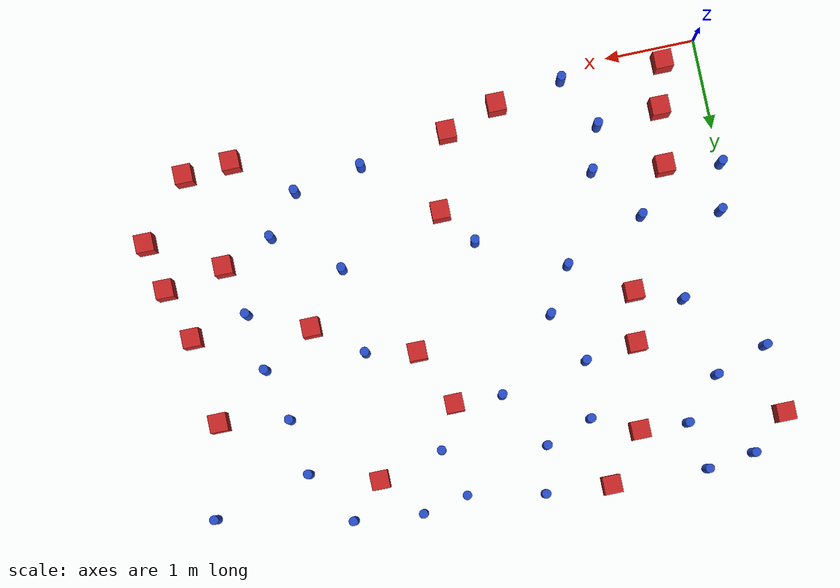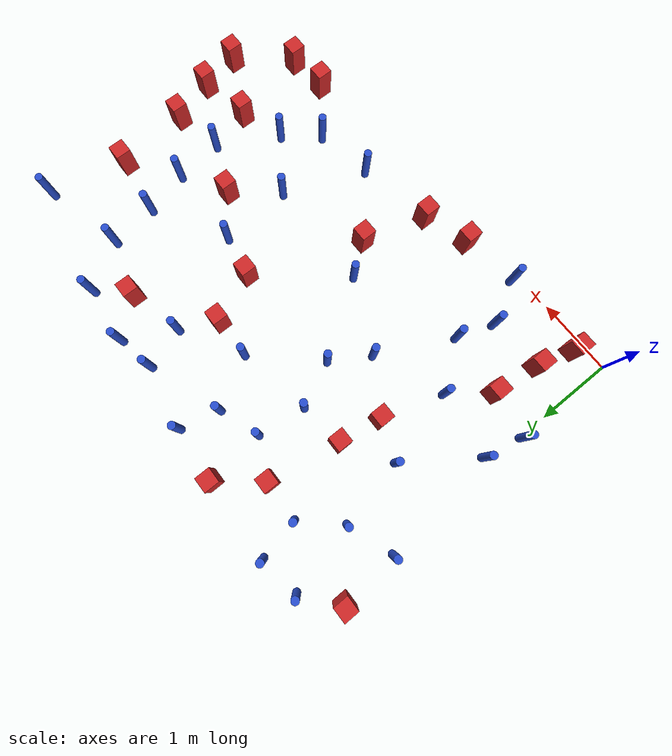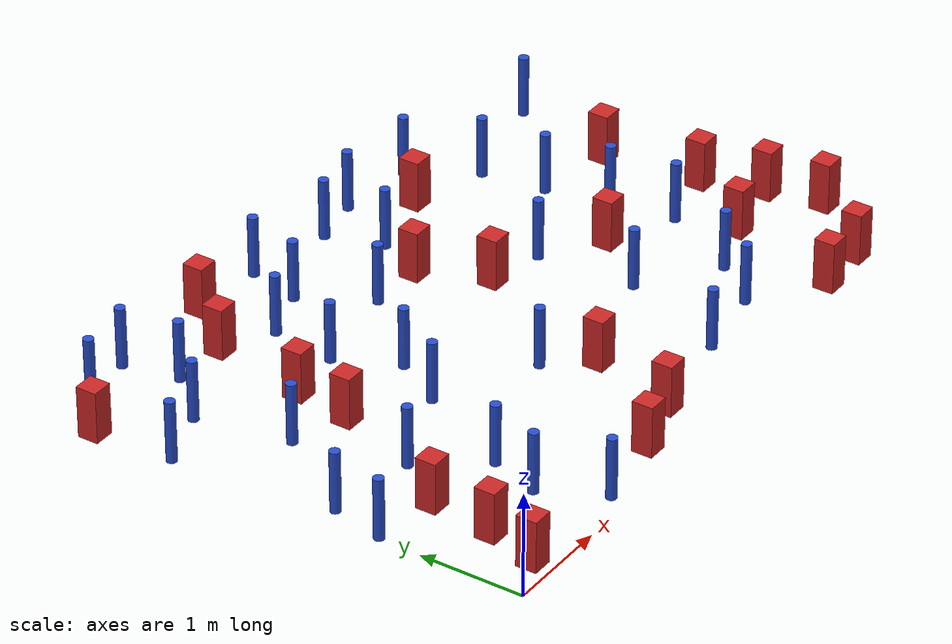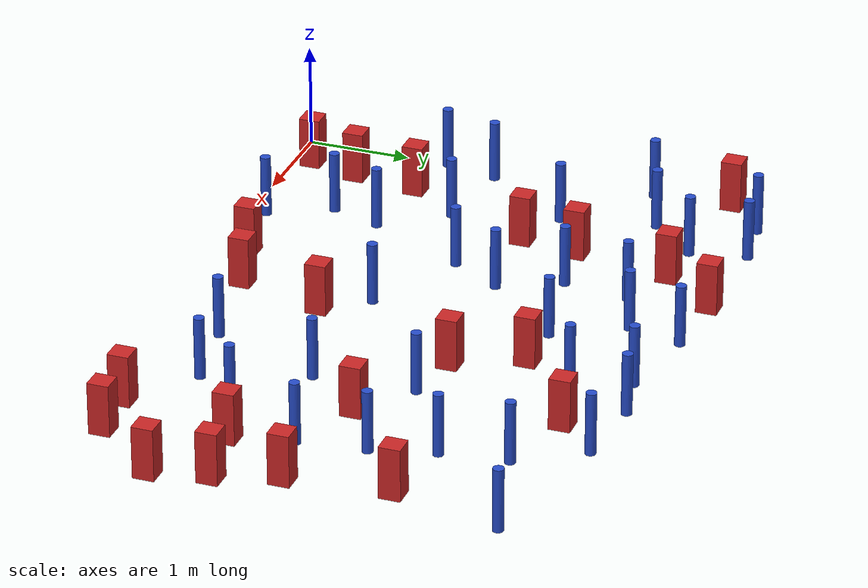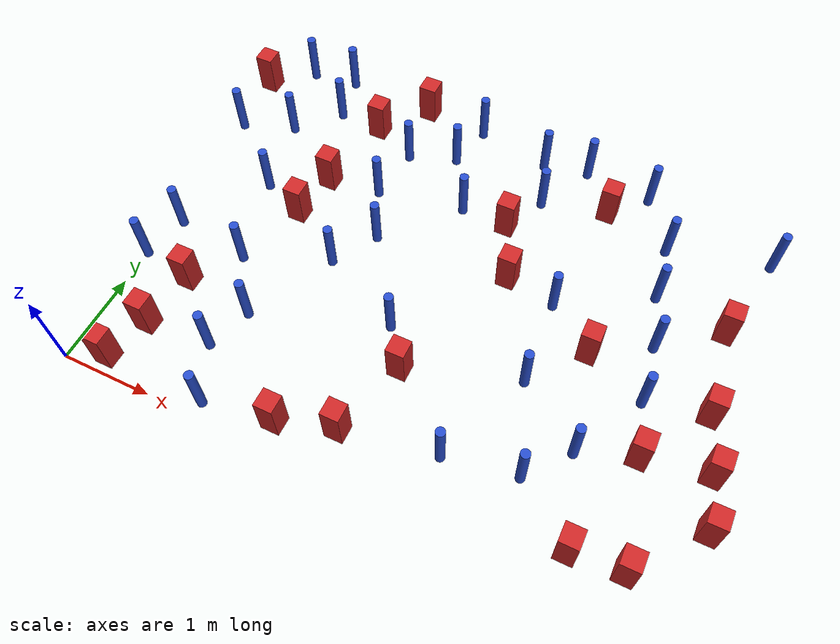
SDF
<sdf version="1.6">
 <model name="dense_39">
  <model name="square_post_obstacle1">
   <static>true</static>
   <pose>3.69093480242 2.77040469333 1.91545236811e-07 -7.35059704564e-06 1.12565212e-07 2.39332434364e-05</pose>
   <link name="link">
    <pose>0 0 0.25 0 -0 0</pose>
    <inertial>
     <mass>100</mass>
     <inertia>
      <ixx>0.166667</ixx>
      <ixy>0</ixy>
      <ixz>0</ixz>
      <iyy>0.166667</iyy>
      <iyz>0</iyz>
      <izz>0.166667</izz>
     </inertia>
    </inertial>
    <collision name="collision"><geometry><box><size>.2 .2 .5</size></box></geometry></collision>
    <visual name="visual">
     <geometry><box><size>.2 .2 .5</size></box></geometry>
     <material>
      <script><name>Gazebo/Red</name><uri>file://media/materials/scripts/gazebo.material</uri></script>
     </material>
    </visual>
   </link>
  </model>
  <model name="square_post_obstacle6">
   <static>true</static>
   <pose>4.7739497226 2.27891876205 1.91545236811e-07 -7.35059704564e-06 1.12565212e-07 2.39332434364e-05</pose>
   <link name="link">
    <pose>0 0 0.25 0 -0 0</pose>
    <inertial>
     <mass>100</mass>
     <inertia>
      <ixx>0.166667</ixx>
      <ixy>0</ixy>
      <ixz>0</ixz>
      <iyy>0.166667</iyy>
      <iyz>0</iyz>
      <izz>0.166667</izz>
     </inertia>
    </inertial>
    <collision name="collision"><geometry><box><size>.2 .2 .5</size></box></geometry></collision>
    <visual name="visual">
     <geometry><box><size>.2 .2 .5</size></box></geometry>
     <material>
      <script><name>Gazebo/Red</name><uri>file://media/materials/scripts/gazebo.material</uri></script>
     </material>
    </visual>
   </link>
  </model>
  <model name="square_post_obstacle11">
   <static>true</static>
   <pose>5.2790055508 0.315990524747 1.91545236811e-07 -7.35059704564e-06 1.12565212e-07 2.39332434364e-05</pose>
   <link name="link">
    <pose>0 0 0.25 0 -0 0</pose>
    <inertial>
     <mass>100</mass>
     <inertia>
      <ixx>0.166667</ixx>
      <ixy>0</ixy>
      <ixz>0</ixz>
      <iyy>0.166667</iyy>
      <iyz>0</iyz>
      <izz>0.166667</izz>
     </inertia>
    </inertial>
    <collision name="collision"><geometry><box><size>.2 .2 .5</size></box></geometry></collision>
    <visual name="visual">
     <geometry><box><size>.2 .2 .5</size></box></geometry>
     <material>
      <script><name>Gazebo/Red</name><uri>file://media/materials/scripts/gazebo.material</uri></script>
     </material>
    </visual>
   </link>
  </model>
  <model name="pole_obstacle23">
   <static>true</static>
   <pose>2.87624827587 3.41966444536 7.38925637345e-09 -8.47170692798e-08 1.24976764939e-08 -1.74513093025e-07</pose>
   <link name="link">
    <pose>0 0 0.3 0 -0 0</pose>
    <inertial>
     <mass>1</mass>
     <inertia><ixx>0.145833</ixx><ixy>0</ixy><ixz>0</ixz><iyy>0.145833</iyy><iyz>0</iyz><izz>0.125</izz></inertia>
    </inertial>
    <collision name="collision">
     <geometry><cylinder><radius>0.05</radius><length>.6</length></cylinder></geometry>
    </collision>
    <visual name="visual">
     <geometry><cylinder><radius>0.05</radius><length>.6</length></cylinder></geometry>
     <material>
      <script><name>Gazebo/Blue</name><uri>file://media/materials/scripts/gazebo.material</uri></script>
     </material>
    </visual>
   </link>
  </model>
  <model name="pole_obstacle25">
   <static>true</static>
   <pose>0.84421997213 4.65954832367 7.38925637345e-09 -8.471706928e-08 1.24976765086e-08 -1.74513093015e-07</pose>
   <link name="link">
    <pose>0 0 0.3 0 -0 0</pose>
    <inertial>
     <mass>1</mass>
     <inertia><ixx>0.145833</ixx><ixy>0</ixy><ixz>0</ixz><iyy>0.145833</iyy><iyz>0</iyz><izz>0.125</izz></inertia>
    </inertial>
    <collision name="collision">
     <geometry><cylinder><radius>0.05</radius><length>.6</length></cylinder></geometry>
    </collision>
    <visual name="visual">
     <geometry><cylinder><radius>0.05</radius><length>.6</length></cylinder></geometry>
     <material>
      <script><name>Gazebo/Blue</name><uri>file://media/materials/scripts/gazebo.material</uri></script>
     </material>
    </visual>
   </link>
  </model>
  <model name="pole_obstacle27">
   <static>true</static>
   <pose>1.41497289269 1.21649229469 7.38925637345e-09 -8.471706928e-08 1.24976765079e-08 -1.74513093017e-07</pose>
   <link name="link">
    <pose>0 0 0.3 0 -0 0</pose>
    <inertial>
     <mass>1</mass>
     <inertia><ixx>0.145833</ixx><ixy>0</ixy><ixz>0</ixz><iyy>0.145833</iyy><iyz>0</iyz><izz>0.125</izz></inertia>
    </inertial>
    <collision name="collision">
     <geometry><cylinder><radius>0.05</radius><length>.6</length></cylinder></geometry>
    </collision>
    <visual name="visual">
     <geometry><cylinder><radius>0.05</radius><length>.6</length></cylinder></geometry>
     <material>
      <script><name>Gazebo/Blue</name><uri>file://media/materials/scripts/gazebo.material</uri></script>
     </material>
    </visual>
   </link>
  </model>
  <model name="pole_obstacle47">
   <static>true</static>
   <pose>0.00880648228601 1.41226304231 7.38925637345e-09 -8.47170692798e-08 1.24976765026e-08 -1.7451309302e-07</pose>
   <link name="link">
    <pose>0 0 0.3 0 -0 0</pose>
    <inertial>
     <mass>1</mass>
     <inertia><ixx>0.145833</ixx><ixy>0</ixy><ixz>0</ixz><iyy>0.145833</iyy><iyz>0</iyz><izz>0.125</izz></inertia>
    </inertial>
    <collision name="collision">
     <geometry><cylinder><radius>0.05</radius><length>.6</length></cylinder></geometry>
    </collision>
    <visual name="visual">
     <geometry><cylinder><radius>0.05</radius><length>.6</length></cylinder></geometry>
     <material>
      <script><name>Gazebo/Blue</name><uri>file://media/materials/scripts/gazebo.material</uri></script>
     </material>
    </visual>
   </link>
  </model>
  <model name="pole_obstacle50">
   <static>true</static>
   <pose>5.11585093825 3.8405611347 7.38925637345e-09 -8.47170692798e-08 1.24976764937e-08 -1.74513093023e-07</pose>
   <link name="link">
    <pose>0 0 0.3 0 -0 0</pose>
    <inertial>
     <mass>1</mass>
     <inertia><ixx>0.145833</ixx><ixy>0</ixy><ixz>0</ixz><iyy>0.145833</iyy><iyz>0</iyz><izz>0.125</izz></inertia>
    </inertial>
    <collision name="collision">
     <geometry><cylinder><radius>0.05</radius><length>.6</length></cylinder></geometry>
    </collision>
    <visual name="visual">
     <geometry><cylinder><radius>0.05</radius><length>.6</length></cylinder></geometry>
     <material>
      <script><name>Gazebo/Blue</name><uri>file://media/materials/scripts/gazebo.material</uri></script>
     </material>
    </visual>
   </link>
  </model>
  <model name="square_post_obstacle59">
   <static>true</static>
   <pose>6.36979461459 1.01293578345 1.91545236811e-07 -7.35059704564e-06 1.12565212e-07 2.39332434364e-05</pose>
   <link name="link">
    <pose>0 0 0.25 0 -0 0</pose>
    <inertial>
     <mass>100</mass>
     <inertia>
      <ixx>0.166667</ixx>
      <ixy>0</ixy>
      <ixz>0</ixz>
      <iyy>0.166667</iyy>
      <iyz>0</iyz>
      <izz>0.166667</izz>
     </inertia>
    </inertial>
    <collision name="collision"><geometry><box><size>.2 .2 .5</size></box></geometry></collision>
    <visual name="visual">
     <geometry><box><size>.2 .2 .5</size></box></geometry>
     <material>
      <script><name>Gazebo/Red</name><uri>file://media/materials/scripts/gazebo.material</uri></script>
     </material>
    </visual>
   </link>
  </model>
  <model name="pole_obstacle60">
   <static>true</static>
   <pose>1.88599101799 2.17365387695 7.38925637345e-09 -8.47170692799e-08 1.24976765053e-08 -1.74513093017e-07</pose>
   <link name="link">
    <pose>0 0 0.3 0 -0 0</pose>
    <inertial>
     <mass>1</mass>
     <inertia><ixx>0.145833</ixx><ixy>0</ixy><ixz>0</ixz><iyy>0.145833</iyy><iyz>0</iyz><izz>0.125</izz></inertia>
    </inertial>
    <collision name="collision">
     <geometry><cylinder><radius>0.05</radius><length>.6</length></cylinder></geometry>
    </collision>
    <visual name="visual">
     <geometry><cylinder><radius>0.05</radius><length>.6</length></cylinder></geometry>
     <material>
      <script><name>Gazebo/Blue</name><uri>file://media/materials/scripts/gazebo.material</uri></script>
     </material>
    </visual>
   </link>
  </model>
  <model name="square_post_obstacle69">
   <static>true</static>
   <pose>0.623205401381 1.31021452795 1.91545236811e-07 -7.35059704564e-06 1.12565212e-07 2.39332434364e-05</pose>
   <link name="link">
    <pose>0 0 0.25 0 -0 0</pose>
    <inertial>
     <mass>100</mass>
     <inertia>
      <ixx>0.166667</ixx>
      <ixy>0</ixy>
      <ixz>0</ixz>
      <iyy>0.166667</iyy>
      <iyz>0</iyz>
      <izz>0.166667</izz>
     </inertia>
    </inertial>
    <collision name="collision"><geometry><box><size>.2 .2 .5</size></box></geometry></collision>
    <visual name="visual">
     <geometry><box><size>.2 .2 .5</size></box></geometry>
     <material>
      <script><name>Gazebo/Red</name><uri>file://media/materials/scripts/gazebo.material</uri></script>
     </material>
    </visual>
   </link>
  </model>
  <model name="square_post_obstacle77">
   <static>true</static>
   <pose>1.23754936218 2.59867881142 1.91545236811e-07 -7.35059704564e-06 1.12565212e-07 2.39332434364e-05</pose>
   <link name="link">
    <pose>0 0 0.25 0 -0 0</pose>
    <inertial>
     <mass>100</mass>
     <inertia>
      <ixx>0.166667</ixx>
      <ixy>0</ixy>
      <ixz>0</ixz>
      <iyy>0.166667</iyy>
      <iyz>0</iyz>
      <izz>0.166667</izz>
     </inertia>
    </inertial>
    <collision name="collision"><geometry><box><size>.2 .2 .5</size></box></geometry></collision>
    <visual name="visual">
     <geometry><box><size>.2 .2 .5</size></box></geometry>
     <material>
      <script><name>Gazebo/Red</name><uri>file://media/materials/scripts/gazebo.material</uri></script>
     </material>
    </visual>
   </link>
  </model>
  <model name="pole_obstacle84">
   <static>true</static>
   <pose>5.43733819902 1.99366622692 7.38925637345e-09 -8.471706928e-08 1.24976765177e-08 -1.74513093012e-07</pose>
   <link name="link">
    <pose>0 0 0.3 0 -0 0</pose>
    <inertial>
     <mass>1</mass>
     <inertia><ixx>0.145833</ixx><ixy>0</ixy><ixz>0</ixz><iyy>0.145833</iyy><iyz>0</iyz><izz>0.125</izz></inertia>
    </inertial>
    <collision name="collision">
     <geometry><cylinder><radius>0.05</radius><length>.6</length></cylinder></geometry>
    </collision>
    <visual name="visual">
     <geometry><cylinder><radius>0.05</radius><length>.6</length></cylinder></geometry>
     <material>
      <script><name>Gazebo/Blue</name><uri>file://media/materials/scripts/gazebo.material</uri></script>
     </material>
    </visual>
   </link>
  </model>
  <model name="pole_obstacle85">
   <static>true</static>
   <pose>4.65288766754 0.781070810231 7.38925637345e-09 -8.47170692799e-08 1.24976765038e-08 -1.74513093018e-07</pose>
   <link name="link">
    <pose>0 0 0.3 0 -0 0</pose>
    <inertial>
     <mass>1</mass>
     <inertia><ixx>0.145833</ixx><ixy>0</ixy><ixz>0</ixz><iyy>0.145833</iyy><iyz>0</iyz><izz>0.125</izz></inertia>
    </inertial>
    <collision name="collision">
     <geometry><cylinder><radius>0.05</radius><length>.6</length></cylinder></geometry>
    </collision>
    <visual name="visual">
     <geometry><cylinder><radius>0.05</radius><length>.6</length></cylinder></geometry>
     <material>
      <script><name>Gazebo/Blue</name><uri>file://media/materials/scripts/gazebo.material</uri></script>
     </material>
    </visual>
   </link>
  </model>
  <model name="pole_obstacle93">
   <static>true</static>
   <pose>5.19981372832 3.21830600685 7.38925637345e-09 -8.47170692798e-08 1.24976764937e-08 -1.74513093023e-07</pose>
   <link name="link">
    <pose>0 0 0.3 0 -0 0</pose>
    <inertial>
     <mass>1</mass>
     <inertia><ixx>0.145833</ixx><ixy>0</ixy><ixz>0</ixz><iyy>0.145833</iyy><iyz>0</iyz><izz>0.125</izz></inertia>
    </inertial>
    <collision name="collision">
     <geometry><cylinder><radius>0.05</radius><length>.6</length></cylinder></geometry>
    </collision>
    <visual name="visual">
     <geometry><cylinder><radius>0.05</radius><length>.6</length></cylinder></geometry>
     <material>
      <script><name>Gazebo/Blue</name><uri>file://media/materials/scripts/gazebo.material</uri></script>
     </material>
    </visual>
   </link>
  </model>
  <model name="pole_obstacle98">
   <static>true</static>
   <pose>4.73401317206 4.43635557721 7.38925637345e-09 -8.47170692796e-08 1.24976764786e-08 -1.74513093032e-07</pose>
   <link name="link">
    <pose>0 0 0.3 0 -0 0</pose>
    <inertial>
     <mass>1</mass>
     <inertia><ixx>0.145833</ixx><ixy>0</ixy><ixz>0</ixz><iyy>0.145833</iyy><iyz>0</iyz><izz>0.125</izz></inertia>
    </inertial>
    <collision name="collision">
     <geometry><cylinder><radius>0.05</radius><length>.6</length></cylinder></geometry>
    </collision>
    <visual name="visual">
     <geometry><cylinder><radius>0.05</radius><length>.6</length></cylinder></geometry>
     <material>
      <script><name>Gazebo/Blue</name><uri>file://media/materials/scripts/gazebo.material</uri></script>
     </material>
    </visual>
   </link>
  </model>
  <model name="square_post_obstacle89">
   <static>true</static>
   <pose>0.40846533321 0.182893354808 1.91545236811e-07 -7.35059704564e-06 1.12565212e-07 2.39332434364e-05</pose>
   <link name="link">
    <pose>0 0 0.25 0 -0 0</pose>
    <inertial>
     <mass>100</mass>
     <inertia>
      <ixx>0.166667</ixx>
      <ixy>0</ixy>
      <ixz>0</ixz>
      <iyy>0.166667</iyy>
      <iyz>0</iyz>
      <izz>0.166667</izz>
     </inertia>
    </inertial>
    <collision name="collision"><geometry><box><size>.2 .2 .5</size></box></geometry></collision>
    <visual name="visual">
     <geometry><box><size>.2 .2 .5</size></box></geometry>
     <material>
      <script><name>Gazebo/Red</name><uri>file://media/materials/scripts/gazebo.material</uri></script>
     </material>
    </visual>
   </link>
  </model>
  <model name="pole_obstacle102">
   <static>true</static>
   <pose>3.6465529342 3.87782521545 7.38925637345e-09 -8.47170692798e-08 1.24976764939e-08 -1.74513093025e-07</pose>
   <link name="link">
    <pose>0 0 0.3 0 -0 0</pose>
    <inertial>
     <mass>1</mass>
     <inertia><ixx>0.145833</ixx><ixy>0</ixy><ixz>0</ixz><iyy>0.145833</iyy><iyz>0</iyz><izz>0.125</izz></inertia>
    </inertial>
    <collision name="collision">
     <geometry><cylinder><radius>0.05</radius><length>.6</length></cylinder></geometry>
    </collision>
    <visual name="visual">
     <geometry><cylinder><radius>0.05</radius><length>.6</length></cylinder></geometry>
     <material>
      <script><name>Gazebo/Blue</name><uri>file://media/materials/scripts/gazebo.material</uri></script>
     </material>
    </visual>
   </link>
  </model>
  <model name="pole_obstacle106">
   <static>true</static>
   <pose>3.97434509535 4.51274915058 7.38925637345e-09 -8.47170692798e-08 1.24976764915e-08 -1.74513093026e-07</pose>
   <link name="link">
    <pose>0 0 0.3 0 -0 0</pose>
    <inertial>
     <mass>1</mass>
     <inertia><ixx>0.145833</ixx><ixy>0</ixy><ixz>0</ixz><iyy>0.145833</iyy><iyz>0</iyz><izz>0.125</izz></inertia>
    </inertial>
    <collision name="collision">
     <geometry><cylinder><radius>0.05</radius><length>.6</length></cylinder></geometry>
    </collision>
    <visual name="visual">
     <geometry><cylinder><radius>0.05</radius><length>.6</length></cylinder></geometry>
     <material>
      <script><name>Gazebo/Blue</name><uri>file://media/materials/scripts/gazebo.material</uri></script>
     </material>
    </visual>
   </link>
  </model>
  <model name="square_post_obstacle94">
   <static>true</static>
   <pose>5.80845947492 0.359265321102 1.91545236811e-07 -7.35059704564e-06 1.12565212e-07 2.39332434364e-05</pose>
   <link name="link">
    <pose>0 0 0.25 0 -0 0</pose>
    <inertial>
     <mass>100</mass>
     <inertia>
      <ixx>0.166667</ixx>
      <ixy>0</ixy>
      <ixz>0</ixz>
      <iyy>0.166667</iyy>
      <iyz>0</iyz>
      <izz>0.166667</izz>
     </inertia>
    </inertial>
    <collision name="collision"><geometry><box><size>.2 .2 .5</size></box></geometry></collision>
    <visual name="visual">
     <geometry><box><size>.2 .2 .5</size></box></geometry>
     <material>
      <script><name>Gazebo/Red</name><uri>file://media/materials/scripts/gazebo.material</uri></script>
     </material>
    </visual>
   </link>
  </model>
  <model name="pole_obstacle107">
   <static>true</static>
   <pose>4.31555954134 1.71514344017 7.38925637345e-09 -8.471706928e-08 1.24976765134e-08 -1.74513093015e-07</pose>
   <link name="link">
    <pose>0 0 0.3 0 -0 0</pose>
    <inertial>
     <mass>1</mass>
     <inertia><ixx>0.145833</ixx><ixy>0</ixy><ixz>0</ixz><iyy>0.145833</iyy><iyz>0</iyz><izz>0.125</izz></inertia>
    </inertial>
    <collision name="collision">
     <geometry><cylinder><radius>0.05</radius><length>.6</length></cylinder></geometry>
    </collision>
    <visual name="visual">
     <geometry><cylinder><radius>0.05</radius><length>.6</length></cylinder></geometry>
     <material>
      <script><name>Gazebo/Blue</name><uri>file://media/materials/scripts/gazebo.material</uri></script>
     </material>
    </visual>
   </link>
  </model>
  <model name="square_post_obstacle95">
   <static>true</static>
   <pose>-0.101948517091 4.22717936182 1.91545236811e-07 -7.35059704564e-06 1.12565212e-07 2.39332434364e-05</pose>
   <link name="link">
    <pose>0 0 0.25 0 -0 0</pose>
    <inertial>
     <mass>100</mass>
     <inertia>
      <ixx>0.166667</ixx>
      <ixy>0</ixy>
      <ixz>0</ixz>
      <iyy>0.166667</iyy>
      <iyz>0</iyz>
      <izz>0.166667</izz>
     </inertia>
    </inertial>
    <collision name="collision"><geometry><box><size>.2 .2 .5</size></box></geometry></collision>
    <visual name="visual">
     <geometry><box><size>.2 .2 .5</size></box></geometry>
     <material>
      <script><name>Gazebo/Red</name><uri>file://media/materials/scripts/gazebo.material</uri></script>
     </material>
    </visual>
   </link>
  </model>
  <model name="pole_obstacle108">
   <static>true</static>
   <pose>3.88953869715 0.647155087251 7.38925637345e-09 -8.471706928e-08 1.24976765177e-08 -1.74513093012e-07</pose>
   <link name="link">
    <pose>0 0 0.3 0 -0 0</pose>
    <inertial>
     <mass>1</mass>
     <inertia><ixx>0.145833</ixx><ixy>0</ixy><ixz>0</ixz><iyy>0.145833</iyy><iyz>0</iyz><izz>0.125</izz></inertia>
    </inertial>
    <collision name="collision">
     <geometry><cylinder><radius>0.05</radius><length>.6</length></cylinder></geometry>
    </collision>
    <visual name="visual">
     <geometry><cylinder><radius>0.05</radius><length>.6</length></cylinder></geometry>
     <material>
      <script><name>Gazebo/Blue</name><uri>file://media/materials/scripts/gazebo.material</uri></script>
     </material>
    </visual>
   </link>
  </model>
  <model name="pole_obstacle117">
   <static>true</static>
   <pose>2.63049294714 4.57048623213 7.38925637345e-09 -8.47170692798e-08 1.24976765033e-08 -1.74513093019e-07</pose>
   <link name="link">
    <pose>0 0 0.3 0 -0 0</pose>
    <inertial>
     <mass>1</mass>
     <inertia><ixx>0.145833</ixx><ixy>0</ixy><ixz>0</ixz><iyy>0.145833</iyy><iyz>0</iyz><izz>0.125</izz></inertia>
    </inertial>
    <collision name="collision">
     <geometry><cylinder><radius>0.05</radius><length>.6</length></cylinder></geometry>
    </collision>
    <visual name="visual">
     <geometry><cylinder><radius>0.05</radius><length>.6</length></cylinder></geometry>
     <material>
      <script><name>Gazebo/Blue</name><uri>file://media/materials/scripts/gazebo.material</uri></script>
     </material>
    </visual>
   </link>
  </model>
  <model name="square_post_obstacle104">
   <static>true</static>
   <pose>2.89043169182 0.468016954105 1.91545236811e-07 -7.35059704564e-06 1.12565212e-07 2.39332434364e-05</pose>
   <link name="link">
    <pose>0 0 0.25 0 -0 0</pose>
    <inertial>
     <mass>100</mass>
     <inertia>
      <ixx>0.166667</ixx>
      <ixy>0</ixy>
      <ixz>0</ixz>
      <iyy>0.166667</iyy>
      <iyz>0</iyz>
      <izz>0.166667</izz>
     </inertia>
    </inertial>
    <collision name="collision"><geometry><box><size>.2 .2 .5</size></box></geometry></collision>
    <visual name="visual">
     <geometry><box><size>.2 .2 .5</size></box></geometry>
     <material>
      <script><name>Gazebo/Red</name><uri>file://media/materials/scripts/gazebo.material</uri></script>
     </material>
    </visual>
   </link>
  </model>
  <model name="pole_obstacle123">
   <static>true</static>
   <pose>6.20462049952 4.11837966132 7.38925637345e-09 -8.47170692796e-08 1.24976764786e-08 -1.74513093032e-07</pose>
   <link name="link">
    <pose>0 0 0.3 0 -0 0</pose>
    <inertial>
     <mass>1</mass>
     <inertia><ixx>0.145833</ixx><ixy>0</ixy><ixz>0</ixz><iyy>0.145833</iyy><iyz>0</iyz><izz>0.125</izz></inertia>
    </inertial>
    <collision name="collision">
     <geometry><cylinder><radius>0.05</radius><length>.6</length></cylinder></geometry>
    </collision>
    <visual name="visual">
     <geometry><cylinder><radius>0.05</radius><length>.6</length></cylinder></geometry>
     <material>
      <script><name>Gazebo/Blue</name><uri>file://media/materials/scripts/gazebo.material</uri></script>
     </material>
    </visual>
   </link>
  </model>
  <model name="square_post_obstacle113">
   <static>true</static>
   <pose>1.90695930333 4.61768448525 1.91545236811e-07 -7.35059704564e-06 1.12565212e-07 2.39332434364e-05</pose>
   <link name="link">
    <pose>0 0 0.25 0 -0 0</pose>
    <inertial>
     <mass>100</mass>
     <inertia>
      <ixx>0.166667</ixx>
      <ixy>0</ixy>
      <ixz>0</ixz>
      <iyy>0.166667</iyy>
      <iyz>0</iyz>
      <izz>0.166667</izz>
     </inertia>
    </inertial>
    <collision name="collision"><geometry><box><size>.2 .2 .5</size></box></geometry></collision>
    <visual name="visual">
     <geometry><box><size>.2 .2 .5</size></box></geometry>
     <material>
      <script><name>Gazebo/Red</name><uri>file://media/materials/scripts/gazebo.material</uri></script>
     </material>
    </visual>
   </link>
  </model>
  <model name="pole_obstacle132">
   <static>true</static>
   <pose>1.54226629726 0.156424571578 7.38925637345e-09 -8.471706928e-08 1.24976765118e-08 -1.74513093013e-07</pose>
   <link name="link">
    <pose>0 0 0.3 0 -0 0</pose>
    <inertial>
     <mass>1</mass>
     <inertia><ixx>0.145833</ixx><ixy>0</ixy><ixz>0</ixz><iyy>0.145833</iyy><iyz>0</iyz><izz>0.125</izz></inertia>
    </inertial>
    <collision name="collision">
     <geometry><cylinder><radius>0.05</radius><length>.6</length></cylinder></geometry>
    </collision>
    <visual name="visual">
     <geometry><cylinder><radius>0.05</radius><length>.6</length></cylinder></geometry>
     <material>
      <script><name>Gazebo/Blue</name><uri>file://media/materials/scripts/gazebo.material</uri></script>
     </material>
    </visual>
   </link>
  </model>
  <model name="pole_obstacle138">
   <static>true</static>
   <pose>3.47187030067 4.41268664835 7.38925637345e-09 -8.47170692798e-08 1.24976765033e-08 -1.74513093019e-07</pose>
   <link name="link">
    <pose>0 0 0.3 0 -0 0</pose>
    <inertial>
     <mass>1</mass>
     <inertia><ixx>0.145833</ixx><ixy>0</ixy><ixz>0</ixz><iyy>0.145833</iyy><iyz>0</iyz><izz>0.125</izz></inertia>
    </inertial>
    <collision name="collision">
     <geometry><cylinder><radius>0.05</radius><length>.6</length></cylinder></geometry>
    </collision>
    <visual name="visual">
     <geometry><cylinder><radius>0.05</radius><length>.6</length></cylinder></geometry>
     <material>
      <script><name>Gazebo/Blue</name><uri>file://media/materials/scripts/gazebo.material</uri></script>
     </material>
    </visual>
   </link>
  </model>
  <model name="square_post_obstacle121">
   <static>true</static>
   <pose>6.07418528238 2.13106138288 1.91545236811e-07 -7.35059704564e-06 1.12565212e-07 2.39332434364e-05</pose>
   <link name="link">
    <pose>0 0 0.25 0 -0 0</pose>
    <inertial>
     <mass>100</mass>
     <inertia>
      <ixx>0.166667</ixx>
      <ixy>0</ixy>
      <ixz>0</ixz>
      <iyy>0.166667</iyy>
      <iyz>0</iyz>
      <izz>0.166667</izz>
     </inertia>
    </inertial>
    <collision name="collision"><geometry><box><size>.2 .2 .5</size></box></geometry></collision>
    <visual name="visual">
     <geometry><box><size>.2 .2 .5</size></box></geometry>
     <material>
      <script><name>Gazebo/Red</name><uri>file://media/materials/scripts/gazebo.material</uri></script>
     </material>
    </visual>
   </link>
  </model>
  <model name="pole_obstacle139">
   <static>true</static>
   <pose>2.82898563283 1.71364597867 7.38925637345e-09 -8.471706928e-08 1.24976765152e-08 -1.74513093012e-07</pose>
   <link name="link">
    <pose>0 0 0.3 0 -0 0</pose>
    <inertial>
     <mass>1</mass>
     <inertia><ixx>0.145833</ixx><ixy>0</ixy><ixz>0</ixz><iyy>0.145833</iyy><iyz>0</iyz><izz>0.125</izz></inertia>
    </inertial>
    <collision name="collision">
     <geometry><cylinder><radius>0.05</radius><length>.6</length></cylinder></geometry>
    </collision>
    <visual name="visual">
     <geometry><cylinder><radius>0.05</radius><length>.6</length></cylinder></geometry>
     <material>
      <script><name>Gazebo/Blue</name><uri>file://media/materials/scripts/gazebo.material</uri></script>
     </material>
    </visual>
   </link>
  </model>
  <model name="pole_obstacle141">
   <static>true</static>
   <pose>2.50846986795 4.05662313125 7.38925637345e-09 -8.47170692798e-08 1.24976765033e-08 -1.74513093019e-07</pose>
   <link name="link">
    <pose>0 0 0.3 0 -0 0</pose>
    <inertial>
     <mass>1</mass>
     <inertia><ixx>0.145833</ixx><ixy>0</ixy><ixz>0</ixz><iyy>0.145833</iyy><iyz>0</iyz><izz>0.125</izz></inertia>
    </inertial>
    <collision name="collision">
     <geometry><cylinder><radius>0.05</radius><length>.6</length></cylinder></geometry>
    </collision>
    <visual name="visual">
     <geometry><cylinder><radius>0.05</radius><length>.6</length></cylinder></geometry>
     <material>
      <script><name>Gazebo/Blue</name><uri>file://media/materials/scripts/gazebo.material</uri></script>
     </material>
    </visual>
   </link>
  </model>
  <model name="square_post_obstacle128">
   <static>true</static>
   <pose>2.29668763704 0.281775508919 1.91545236811e-07 -7.35059704564e-06 1.12565212e-07 2.39332434364e-05</pose>
   <link name="link">
    <pose>0 0 0.25 0 -0 0</pose>
    <inertial>
     <mass>100</mass>
     <inertia>
      <ixx>0.166667</ixx>
      <ixy>0</ixy>
      <ixz>0</ixz>
      <iyy>0.166667</iyy>
      <iyz>0</iyz>
      <izz>0.166667</izz>
     </inertia>
    </inertial>
    <collision name="collision"><geometry><box><size>.2 .2 .5</size></box></geometry></collision>
    <visual name="visual">
     <geometry><box><size>.2 .2 .5</size></box></geometry>
     <material>
      <script><name>Gazebo/Red</name><uri>file://media/materials/scripts/gazebo.material</uri></script>
     </material>
    </visual>
   </link>
  </model>
  <model name="pole_obstacle144">
   <static>true</static>
   <pose>2.17845305973 2.66415931733 7.38925637345e-09 -8.47170692798e-08 1.24976764939e-08 -1.74513093025e-07</pose>
   <link name="link">
    <pose>0 0 0.3 0 -0 0</pose>
    <inertial>
     <mass>1</mass>
     <inertia><ixx>0.145833</ixx><ixy>0</ixy><ixz>0</ixz><iyy>0.145833</iyy><iyz>0</iyz><izz>0.125</izz></inertia>
    </inertial>
    <collision name="collision">
     <geometry><cylinder><radius>0.05</radius><length>.6</length></cylinder></geometry>
    </collision>
    <visual name="visual">
     <geometry><cylinder><radius>0.05</radius><length>.6</length></cylinder></geometry>
     <material>
      <script><name>Gazebo/Blue</name><uri>file://media/materials/scripts/gazebo.material</uri></script>
     </material>
    </visual>
   </link>
  </model>
  <model name="square_post_obstacle138">
   <static>true</static>
   <pose>3.13493858302 1.31204606265 1.91545236811e-07 -7.35059704564e-06 1.12565212e-07 2.39332434364e-05</pose>
   <link name="link">
    <pose>0 0 0.25 0 -0 0</pose>
    <inertial>
     <mass>100</mass>
     <inertia>
      <ixx>0.166667</ixx>
      <ixy>0</ixy>
      <ixz>0</ixz>
      <iyy>0.166667</iyy>
      <iyz>0</iyz>
      <izz>0.166667</izz>
     </inertia>
    </inertial>
    <collision name="collision"><geometry><box><size>.2 .2 .5</size></box></geometry></collision>
    <visual name="visual">
     <geometry><box><size>.2 .2 .5</size></box></geometry>
     <material>
      <script><name>Gazebo/Red</name><uri>file://media/materials/scripts/gazebo.material</uri></script>
     </material>
    </visual>
   </link>
  </model>
  <model name="square_post_obstacle142">
   <static>true</static>
   <pose>0.545471909713 0.678347566706 1.91545236811e-07 -7.35059704564e-06 1.12565212e-07 2.39332434364e-05</pose>
   <link name="link">
    <pose>0 0 0.25 0 -0 0</pose>
    <inertial>
     <mass>100</mass>
     <inertia>
      <ixx>0.166667</ixx>
      <ixy>0</ixy>
      <ixz>0</ixz>
      <iyy>0.166667</iyy>
      <iyz>0</iyz>
      <izz>0.166667</izz>
     </inertia>
    </inertial>
    <collision name="collision"><geometry><box><size>.2 .2 .5</size></box></geometry></collision>
    <visual name="visual">
     <geometry><box><size>.2 .2 .5</size></box></geometry>
     <material>
      <script><name>Gazebo/Red</name><uri>file://media/materials/scripts/gazebo.material</uri></script>
     </material>
    </visual>
   </link>
  </model>
  <model name="square_post_obstacle150">
   <static>true</static>
   <pose>4.36897075444 4.05901729462 1.91545236811e-07 -7.35059704564e-06 1.12565212e-07 2.39332434364e-05</pose>
   <link name="link">
    <pose>0 0 0.25 0 -0 0</pose>
    <inertial>
     <mass>100</mass>
     <inertia>
      <ixx>0.166667</ixx>
      <ixy>0</ixy>
      <ixz>0</ixz>
      <iyy>0.166667</iyy>
      <iyz>0</iyz>
      <izz>0.166667</izz>
     </inertia>
    </inertial>
    <collision name="collision"><geometry><box><size>.2 .2 .5</size></box></geometry></collision>
    <visual name="visual">
     <geometry><box><size>.2 .2 .5</size></box></geometry>
     <material>
      <script><name>Gazebo/Red</name><uri>file://media/materials/scripts/gazebo.material</uri></script>
     </material>
    </visual>
   </link>
  </model>
  <model name="pole_obstacle171">
   <static>true</static>
   <pose>0.122333705458 1.92549914425 7.38925637345e-09 -8.47170692799e-08 1.24976765019e-08 -1.74513093021e-07</pose>
   <link name="link">
    <pose>0 0 0.3 0 -0 0</pose>
    <inertial>
     <mass>1</mass>
     <inertia><ixx>0.145833</ixx><ixy>0</ixy><ixz>0</ixz><iyy>0.145833</iyy><iyz>0</iyz><izz>0.125</izz></inertia>
    </inertial>
    <collision name="collision">
     <geometry><cylinder><radius>0.05</radius><length>.6</length></cylinder></geometry>
    </collision>
    <visual name="visual">
     <geometry><cylinder><radius>0.05</radius><length>.6</length></cylinder></geometry>
     <material>
      <script><name>Gazebo/Blue</name><uri>file://media/materials/scripts/gazebo.material</uri></script>
     </material>
    </visual>
   </link>
  </model>
  <model name="pole_obstacle177">
   <static>true</static>
   <pose>0.953067478455 4.12687048384 7.38925637345e-09 -8.471706928e-08 1.24976765144e-08 -1.74513093012e-07</pose>
   <link name="link">
    <pose>0 0 0.3 0 -0 0</pose>
    <inertial>
     <mass>1</mass>
     <inertia><ixx>0.145833</ixx><ixy>0</ixy><ixz>0</ixz><iyy>0.145833</iyy><iyz>0</iyz><izz>0.125</izz></inertia>
    </inertial>
    <collision name="collision">
     <geometry><cylinder><radius>0.05</radius><length>.6</length></cylinder></geometry>
    </collision>
    <visual name="visual">
     <geometry><cylinder><radius>0.05</radius><length>.6</length></cylinder></geometry>
     <material>
      <script><name>Gazebo/Blue</name><uri>file://media/materials/scripts/gazebo.material</uri></script>
     </material>
    </visual>
   </link>
  </model>
  <model name="square_post_obstacle172">
   <static>true</static>
   <pose>1.3238068495 3.15627844694 1.91545236811e-07 -7.35059704564e-06 1.12565212e-07 2.39332434364e-05</pose>
   <link name="link">
    <pose>0 0 0.25 0 -0 0</pose>
    <inertial>
     <mass>100</mass>
     <inertia>
      <ixx>0.166667</ixx>
      <ixy>0</ixy>
      <ixz>0</ixz>
      <iyy>0.166667</iyy>
      <iyz>0</iyz>
      <izz>0.166667</izz>
     </inertia>
    </inertial>
    <collision name="collision"><geometry><box><size>.2 .2 .5</size></box></geometry></collision>
    <visual name="visual">
     <geometry><box><size>.2 .2 .5</size></box></geometry>
     <material>
      <script><name>Gazebo/Red</name><uri>file://media/materials/scripts/gazebo.material</uri></script>
     </material>
    </visual>
   </link>
  </model>
  <model name="square_post_obstacle174">
   <static>true</static>
   <pose>5.5800804339 1.42703444955 1.91545236811e-07 -7.35059704564e-06 1.12565212e-07 2.39332434364e-05</pose>
   <link name="link">
    <pose>0 0 0.25 0 -0 0</pose>
    <inertial>
     <mass>100</mass>
     <inertia>
      <ixx>0.166667</ixx>
      <ixy>0</ixy>
      <ixz>0</ixz>
      <iyy>0.166667</iyy>
      <iyz>0</iyz>
      <izz>0.166667</izz>
     </inertia>
    </inertial>
    <collision name="collision"><geometry><box><size>.2 .2 .5</size></box></geometry></collision>
    <visual name="visual">
     <geometry><box><size>.2 .2 .5</size></box></geometry>
     <material>
      <script><name>Gazebo/Red</name><uri>file://media/materials/scripts/gazebo.material</uri></script>
     </material>
    </visual>
   </link>
  </model>
  <model name="square_post_obstacle176">
   <static>true</static>
   <pose>1.48437570815 4.09719617396 1.91545236811e-07 -7.35059704564e-06 1.12565212e-07 2.39332434364e-05</pose>
   <link name="link">
    <pose>0 0 0.25 0 -0 0</pose>
    <inertial>
     <mass>100</mass>
     <inertia>
      <ixx>0.166667</ixx>
      <ixy>0</ixy>
      <ixz>0</ixz>
      <iyy>0.166667</iyy>
      <iyz>0</iyz>
      <izz>0.166667</izz>
     </inertia>
    </inertial>
    <collision name="collision"><geometry><box><size>.2 .2 .5</size></box></geometry></collision>
    <visual name="visual">
     <geometry><box><size>.2 .2 .5</size></box></geometry>
     <material>
      <script><name>Gazebo/Red</name><uri>file://media/materials/scripts/gazebo.material</uri></script>
     </material>
    </visual>
   </link>
  </model>
  <model name="square_post_obstacle177">
   <static>true</static>
   <pose>6.25787281456 1.54996833769 1.91545236811e-07 -7.35059704564e-06 1.12565212e-07 2.39332434364e-05</pose>
   <link name="link">
    <pose>0 0 0.25 0 -0 0</pose>
    <inertial>
     <mass>100</mass>
     <inertia>
      <ixx>0.166667</ixx>
      <ixy>0</ixy>
      <ixz>0</ixz>
      <iyy>0.166667</iyy>
      <iyz>0</iyz>
      <izz>0.166667</izz>
     </inertia>
    </inertial>
    <collision name="collision"><geometry><box><size>.2 .2 .5</size></box></geometry></collision>
    <visual name="visual">
     <geometry><box><size>.2 .2 .5</size></box></geometry>
     <material>
      <script><name>Gazebo/Red</name><uri>file://media/materials/scripts/gazebo.material</uri></script>
     </material>
    </visual>
   </link>
  </model>
  <model name="square_post_obstacle178">
   <static>true</static>
   <pose>3.40993980374 3.40553398249 1.91545236811e-07 -7.35059704564e-06 1.12565212e-07 2.39332434364e-05</pose>
   <link name="link">
    <pose>0 0 0.25 0 -0 0</pose>
    <inertial>
     <mass>100</mass>
     <inertia>
      <ixx>0.166667</ixx>
      <ixy>0</ixy>
      <ixz>0</ixz>
      <iyy>0.166667</iyy>
      <iyz>0</iyz>
      <izz>0.166667</izz>
     </inertia>
    </inertial>
    <collision name="collision"><geometry><box><size>.2 .2 .5</size></box></geometry></collision>
    <visual name="visual">
     <geometry><box><size>.2 .2 .5</size></box></geometry>
     <material>
      <script><name>Gazebo/Red</name><uri>file://media/materials/scripts/gazebo.material</uri></script>
     </material>
    </visual>
   </link>
  </model>
  <model name="square_post_obstacle187">
   <static>true</static>
   <pose>5.96561888352 3.09497761402 1.91545236811e-07 -7.35059704564e-06 1.12565212e-07 2.39332434364e-05</pose>
   <link name="link">
    <pose>0 0 0.25 0 -0 0</pose>
    <inertial>
     <mass>100</mass>
     <inertia>
      <ixx>0.166667</ixx>
      <ixy>0</ixy>
      <ixz>0</ixz>
      <iyy>0.166667</iyy>
      <iyz>0</iyz>
      <izz>0.166667</izz>
     </inertia>
    </inertial>
    <collision name="collision"><geometry><box><size>.2 .2 .5</size></box></geometry></collision>
    <visual name="visual">
     <geometry><box><size>.2 .2 .5</size></box></geometry>
     <material>
      <script><name>Gazebo/Red</name><uri>file://media/materials/scripts/gazebo.material</uri></script>
     </material>
    </visual>
   </link>
  </model>
  <model name="pole_obstacle196">
   <static>true</static>
   <pose>5.01350519358 1.21716724321 7.38925637345e-09 -8.471706928e-08 1.24976765134e-08 -1.74513093015e-07</pose>
   <link name="link">
    <pose>0 0 0.3 0 -0 0</pose>
    <inertial>
     <mass>1</mass>
     <inertia><ixx>0.145833</ixx><ixy>0</ixy><ixz>0</ixz><iyy>0.145833</iyy><iyz>0</iyz><izz>0.125</izz></inertia>
    </inertial>
    <collision name="collision">
     <geometry><cylinder><radius>0.05</radius><length>.6</length></cylinder></geometry>
    </collision>
    <visual name="visual">
     <geometry><cylinder><radius>0.05</radius><length>.6</length></cylinder></geometry>
     <material>
      <script><name>Gazebo/Blue</name><uri>file://media/materials/scripts/gazebo.material</uri></script>
     </material>
    </visual>
   </link>
  </model>
  <model name="pole_obstacle199">
   <static>true</static>
   <pose>5.35889315043 2.63113704955 7.38925637345e-09 -8.47170692798e-08 1.24976764937e-08 -1.74513093023e-07</pose>
   <link name="link">
    <pose>0 0 0.3 0 -0 0</pose>
    <inertial>
     <mass>1</mass>
     <inertia><ixx>0.145833</ixx><ixy>0</ixy><ixz>0</ixz><iyy>0.145833</iyy><iyz>0</iyz><izz>0.125</izz></inertia>
    </inertial>
    <collision name="collision">
     <geometry><cylinder><radius>0.05</radius><length>.6</length></cylinder></geometry>
    </collision>
    <visual name="visual">
     <geometry><cylinder><radius>0.05</radius><length>.6</length></cylinder></geometry>
     <material>
      <script><name>Gazebo/Blue</name><uri>file://media/materials/scripts/gazebo.material</uri></script>
     </material>
    </visual>
   </link>
  </model>
  <model name="pole_obstacle200">
   <static>true</static>
   <pose>0.982928005613 1.80267367981 7.38925637345e-09 -8.47170692798e-08 1.24976764951e-08 -1.74513093022e-07</pose>
   <link name="link">
    <pose>0 0 0.3 0 -0 0</pose>
    <inertial>
     <mass>1</mass>
     <inertia><ixx>0.145833</ixx><ixy>0</ixy><ixz>0</ixz><iyy>0.145833</iyy><iyz>0</iyz><izz>0.125</izz></inertia>
    </inertial>
    <collision name="collision">
     <geometry><cylinder><radius>0.05</radius><length>.6</length></cylinder></geometry>
    </collision>
    <visual name="visual">
     <geometry><cylinder><radius>0.05</radius><length>.6</length></cylinder></geometry>
     <material>
      <script><name>Gazebo/Blue</name><uri>file://media/materials/scripts/gazebo.material</uri></script>
     </material>
    </visual>
   </link>
  </model>
  <model name="pole_obstacle201">
   <static>true</static>
   <pose>4.24887799773 2.66493012188 7.38925637345e-09 -8.47170692798e-08 1.24976764937e-08 -1.74513093023e-07</pose>
   <link name="link">
    <pose>0 0 0.3 0 -0 0</pose>
    <inertial>
     <mass>1</mass>
     <inertia><ixx>0.145833</ixx><ixy>0</ixy><ixz>0</ixz><iyy>0.145833</iyy><iyz>0</iyz><izz>0.125</izz></inertia>
    </inertial>
    <collision name="collision">
     <geometry><cylinder><radius>0.05</radius><length>.6</length></cylinder></geometry>
    </collision>
    <visual name="visual">
     <geometry><cylinder><radius>0.05</radius><length>.6</length></cylinder></geometry>
     <material>
      <script><name>Gazebo/Blue</name><uri>file://media/materials/scripts/gazebo.material</uri></script>
     </material>
    </visual>
   </link>
  </model>
  <model name="pole_obstacle210">
   <static>true</static>
   <pose>1.98516598058 3.86835828804 7.38925637345e-09 -8.47170692799e-08 1.24976765015e-08 -1.74513093019e-07</pose>
   <link name="link">
    <pose>0 0 0.3 0 -0 0</pose>
    <inertial>
     <mass>1</mass>
     <inertia><ixx>0.145833</ixx><ixy>0</ixy><ixz>0</ixz><iyy>0.145833</iyy><iyz>0</iyz><izz>0.125</izz></inertia>
    </inertial>
    <collision name="collision">
     <geometry><cylinder><radius>0.05</radius><length>.6</length></cylinder></geometry>
    </collision>
    <visual name="visual">
     <geometry><cylinder><radius>0.05</radius><length>.6</length></cylinder></geometry>
     <material>
      <script><name>Gazebo/Blue</name><uri>file://media/materials/scripts/gazebo.material</uri></script>
     </material>
    </visual>
   </link>
  </model>
  <model name="pole_obstacle211">
   <static>true</static>
   <pose>0.537054522652 3.67712919654 7.38925637345e-09 -8.471706928e-08 1.2497676512e-08 -1.74513093015e-07</pose>
   <link name="link">
    <pose>0 0 0.3 0 -0 0</pose>
    <inertial>
     <mass>1</mass>
     <inertia><ixx>0.145833</ixx><ixy>0</ixy><ixz>0</ixz><iyy>0.145833</iyy><iyz>0</iyz><izz>0.125</izz></inertia>
    </inertial>
    <collision name="collision">
     <geometry><cylinder><radius>0.05</radius><length>.6</length></cylinder></geometry>
    </collision>
    <visual name="visual">
     <geometry><cylinder><radius>0.05</radius><length>.6</length></cylinder></geometry>
     <material>
      <script><name>Gazebo/Blue</name><uri>file://media/materials/scripts/gazebo.material</uri></script>
     </material>
    </visual>
   </link>
  </model>
  <model name="pole_obstacle214">
   <static>true</static>
   <pose>-0.0466436121755 3.46974929724 7.38925637345e-09 -8.47170692793e-08 1.24976764354e-08 -1.74513093044e-07</pose>
   <link name="link">
    <pose>0 0 0.3 0 -0 0</pose>
    <inertial>
     <mass>1</mass>
     <inertia><ixx>0.145833</ixx><ixy>0</ixy><ixz>0</ixz><iyy>0.145833</iyy><iyz>0</iyz><izz>0.125</izz></inertia>
    </inertial>
    <collision name="collision">
     <geometry><cylinder><radius>0.05</radius><length>.6</length></cylinder></geometry>
    </collision>
    <visual name="visual">
     <geometry><cylinder><radius>0.05</radius><length>.6</length></cylinder></geometry>
     <material>
      <script><name>Gazebo/Blue</name><uri>file://media/materials/scripts/gazebo.material</uri></script>
     </material>
    </visual>
   </link>
  </model>
  <model name="pole_obstacle226">
   <static>true</static>
   <pose>1.25365000957 0.734221020781 7.38925637345e-09 -8.47170692799e-08 1.24976765075e-08 -1.74513093017e-07</pose>
   <link name="link">
    <pose>0 0 0.3 0 -0 0</pose>
    <inertial>
     <mass>1</mass>
     <inertia><ixx>0.145833</ixx><ixy>0</ixy><ixz>0</ixz><iyy>0.145833</iyy><iyz>0</iyz><izz>0.125</izz></inertia>
    </inertial>
    <collision name="collision">
     <geometry><cylinder><radius>0.05</radius><length>.6</length></cylinder></geometry>
    </collision>
    <visual name="visual">
     <geometry><cylinder><radius>0.05</radius><length>.6</length></cylinder></geometry>
     <material>
      <script><name>Gazebo/Blue</name><uri>file://media/materials/scripts/gazebo.material</uri></script>
     </material>
    </visual>
   </link>
  </model>
  <model name="pole_obstacle230">
   <static>true</static>
   <pose>1.90436000957 3.23788002078 7.38925637345e-09 -8.47170692793e-08 1.24976764479e-08 -1.74513093037e-07</pose>
   <link name="link">
    <pose>0 0 0.3 0 -0 0</pose>
    <inertial>
     <mass>1</mass>
     <inertia><ixx>0.145833</ixx><ixy>0</ixy><ixz>0</ixz><iyy>0.145833</iyy><iyz>0</iyz><izz>0.125</izz></inertia>
    </inertial>
    <collision name="collision">
     <geometry><cylinder><radius>0.05</radius><length>.6</length></cylinder></geometry>
    </collision>
    <visual name="visual">
     <geometry><cylinder><radius>0.05</radius><length>.6</length></cylinder></geometry>
     <material>
      <script><name>Gazebo/Blue</name><uri>file://media/materials/scripts/gazebo.material</uri></script>
     </material>
    </visual>
   </link>
  </model>
  <model name="pole_obstacle233">
   <static>true</static>
   <pose>0.316634009575 4.58930002078 7.38925637345e-09 -8.47170692799e-08 1.2497676511e-08 -1.74513093014e-07</pose>
   <link name="link">
    <pose>0 0 0.3 0 -0 0</pose>
    <inertial>
     <mass>1</mass>
     <inertia><ixx>0.145833</ixx><ixy>0</ixy><ixz>0</ixz><iyy>0.145833</iyy><iyz>0</iyz><izz>0.125</izz></inertia>
    </inertial>
    <collision name="collision">
     <geometry><cylinder><radius>0.05</radius><length>.6</length></cylinder></geometry>
    </collision>
    <visual name="visual">
     <geometry><cylinder><radius>0.05</radius><length>.6</length></cylinder></geometry>
     <material>
      <script><name>Gazebo/Blue</name><uri>file://media/materials/scripts/gazebo.material</uri></script>
     </material>
    </visual>
   </link>
  </model>
  <model name="pole_obstacle235">
   <static>true</static>
   <pose>0.723064009575 2.79174002078 7.38925637345e-09 -8.47170692799e-08 1.24976765064e-08 -1.74513093017e-07</pose>
   <link name="link">
    <pose>0 0 0.3 0 -0 0</pose>
    <inertial>
     <mass>1</mass>
     <inertia><ixx>0.145833</ixx><ixy>0</ixy><ixz>0</ixz><iyy>0.145833</iyy><iyz>0</iyz><izz>0.125</izz></inertia>
    </inertial>
    <collision name="collision">
     <geometry><cylinder><radius>0.05</radius><length>.6</length></cylinder></geometry>
    </collision>
    <visual name="visual">
     <geometry><cylinder><radius>0.05</radius><length>.6</length></cylinder></geometry>
     <material>
      <script><name>Gazebo/Blue</name><uri>file://media/materials/scripts/gazebo.material</uri></script>
     </material>
    </visual>
   </link>
  </model>
 </model>
</sdf>
